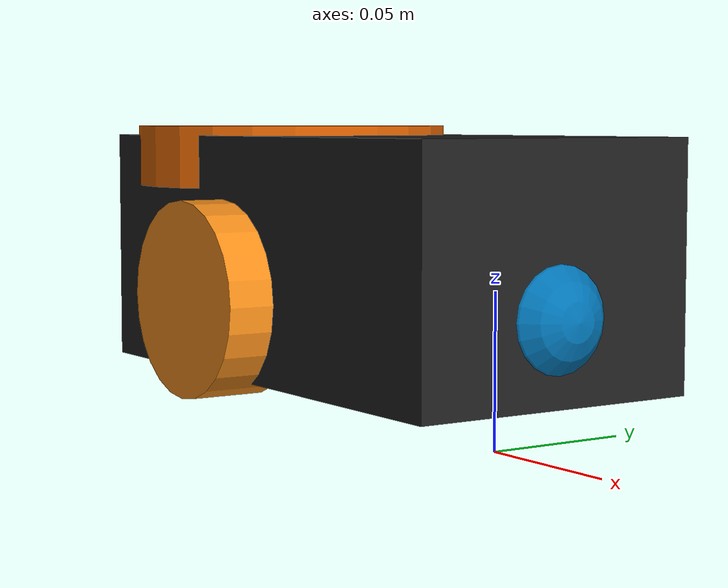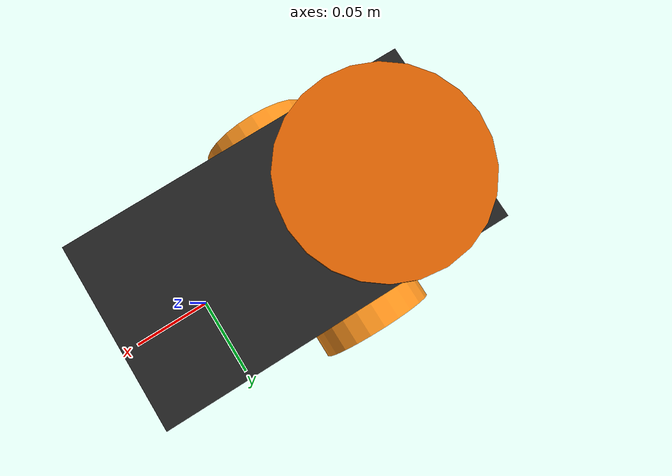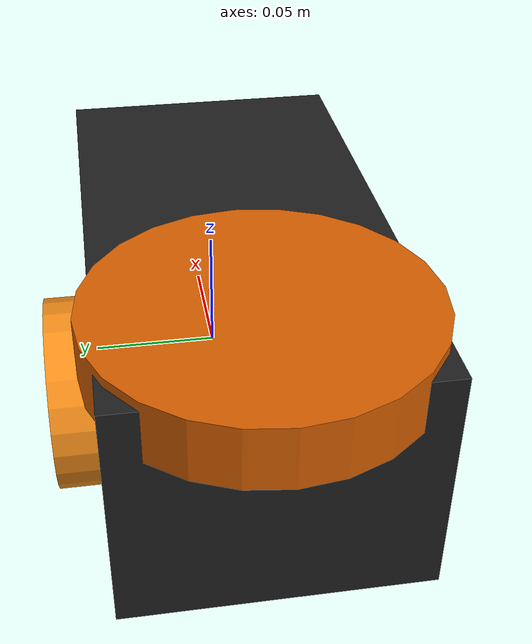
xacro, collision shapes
<?xml version="1.0" ?>
<robot name="ros_robot" xmlns:xacro="http://ros.org/wiki/xacro">
  <xacro:include filename="$(find robot_description)/urdf/common_properties.xacro"/>
  <xacro:include filename="$(find robot_description)/urdf/robot_chassis.gazebo2.xacro"/>
  <link name="base_footprint"/>

  <joint name="base_joint" type="fixed">
    <parent link="base_footprint"/>
    <child link="base_link" />
    <origin xyz="0 0 0.010" rpy="0 0 0"/>
  </joint>

  <link name="base_link">
    <visual>
      <origin xyz="-0.064 0.0 0.0473" rpy="0 0 1.57"/>
      <geometry>
        <mesh filename="package://robot_description/meshes/Chassis.stl" scale="0.001 0.001 0.001"/>
      </geometry>
      <material name="light_black"/>
    </visual>

    <collision>
      <origin xyz="-0.064 0 0.0473" rpy="0 0 1.57"/>
      <geometry>
        <box size="0.1 0.19 0.08"/>
      </geometry>
    </collision>

    <inertial>
      <origin xyz="0 0 0" rpy="0 0 0"/>
      <mass value="0.532"/>
      <inertia ixx="0.001" ixy="0.000" ixz="0.00"
               iyy="0.001" iyz="0.000"
               izz="0.001" />
    </inertial>
  </link>

  <joint name="wheel_left_joint" type="continuous">
    <parent link="base_link"/>
    <child link="wheel_left_link"/>
    <origin xyz="-0.082 -0.053 0.034" rpy="0 -1.57 1.57"/>
    <axis xyz="0 0 1"/>
  </joint>

  <link name="wheel_left_link">
    <visual>
      <origin xyz="0.0 0.0 0.0 " rpy="0 0 0 "/>
      <geometry>
        <mesh filename="package://robot_description/meshes/left_tire.stl" scale="0.001 0.001 0.001"/>
      </geometry>
      <material name="orange"/>
    </visual>

    <collision>
      <origin xyz="0.0 0.0 0.0" rpy="0 0 0"/>
      <geometry>
        <cylinder length="0.025" radius="0.0325"/>
      </geometry>
    </collision>

    <inertial>
      <origin xyz="0 0 0" />
      <mass value="0.049" />
      <inertia ixx="3.07e-5" ixy="0.00" ixz="0.00"
               iyy="3.07e-5" iyz="0.00"
               izz="3.89e-5" />
      </inertial>
  </link>

  <joint name="wheel_right_joint" type="continuous">
    <parent link="base_link"/>
    <child link="wheel_right_link"/>
    <origin xyz="-0.082 0.053 0.034" rpy="0 -1.57 -1.57"/>
    <axis xyz="0 0 -1"/>
  </joint>

  <link name="wheel_right_link">
    <visual>
      <origin xyz="0.0 0.0 0.0" rpy="0 0 0"/>
      <geometry>
        <mesh filename="package://robot_description/meshes/right_tire.stl" scale="0.001 0.001 0.001"/>
      </geometry>
      <material name="orange"/>
    </visual>

    <collision>
      <origin xyz="0.0 0.0 0.0" rpy="0 0 0"/>
      <geometry>
        <cylinder length="0.025" radius="0.0325"/>
      </geometry>
    </collision>

     <inertial>
      <origin xyz="0 0 0" />
      <mass value="0.049" />
      <inertia ixx="3.07e-5" ixy="0.00" ixz="0.00"
               iyy="3.07e-5" iyz="0.00"
               izz="3.89e-5" />
      </inertial>
  </link>

  <joint name="caster_joint" type="fixed">
    <parent link="base_link"/>
    <child link="caster_link"/>
    <origin xyz="0.01 0 0.034" rpy="-1.57 0 1.57"/>
  </joint>

  <link name="caster_link">
	<visual>
      <origin xyz="0.0 0.0 0.0" rpy="0 0 0"/>
      <geometry>
        <mesh filename="package://robot_description/meshes/Caster_Wheel.stl" scale="0.001 0.001 0.001"/>
      </geometry>
      <material name="dark"/>
    </visual>

	<collision>
      <origin xyz="0 0 -0.01" rpy="0 0 0"/>
      <geometry>
        <sphere radius="0.02"/>
      </geometry>
    </collision>

    <inertial>
      <origin xyz="0 0 0" />
      <mass value="0.039" />
      <inertia ixx="1.03e-5" ixy="-2.13e-8" ixz="1.22e-8"
               iyy="7.52e-6" iyz="-3.19e-6"
               izz="8.86e-6" />
    </inertial>
  </link>

  <joint name="scan_joint" type="fixed">
    <parent link="base_link"/>
    <child link="laser"/>
    <origin xyz="-0.120 0 0.08" rpy="0 0 0"/>
  </joint>

  <link name="laser">
    <visual>
      <origin xyz="0.0 0.0 0.0" rpy="0 0 0"/>
      <geometry>
        <mesh filename="package://robot_description/meshes/lds.stl" scale="0.001 0.001 0.001"/>
      </geometry>
      <material name="dark"/>
    </visual>

    <collision>
      <origin xyz="0.0 0 0.0" rpy="0 0 0"/>
      <geometry>
        <cylinder length="0.021" radius="0.055"/>
      </geometry>
    </collision>

    <inertial>
      <mass value="0.114" />
      <origin xyz="0 0 0" />
      <inertia ixx="0.001" ixy="0.0" ixz="0.0"
               iyy="0.001" iyz="0.0"
               izz="0.001" />
    </inertial>
  </link>

  <joint name="imu_joint" type="fixed">
    <parent link="base_link"/>
    <child link="imu_link"/>
    <origin xyz="0.0 0 0.068" rpy="0 0 0"/>
  </joint>

  <link name="imu_link"/>

</robot>
